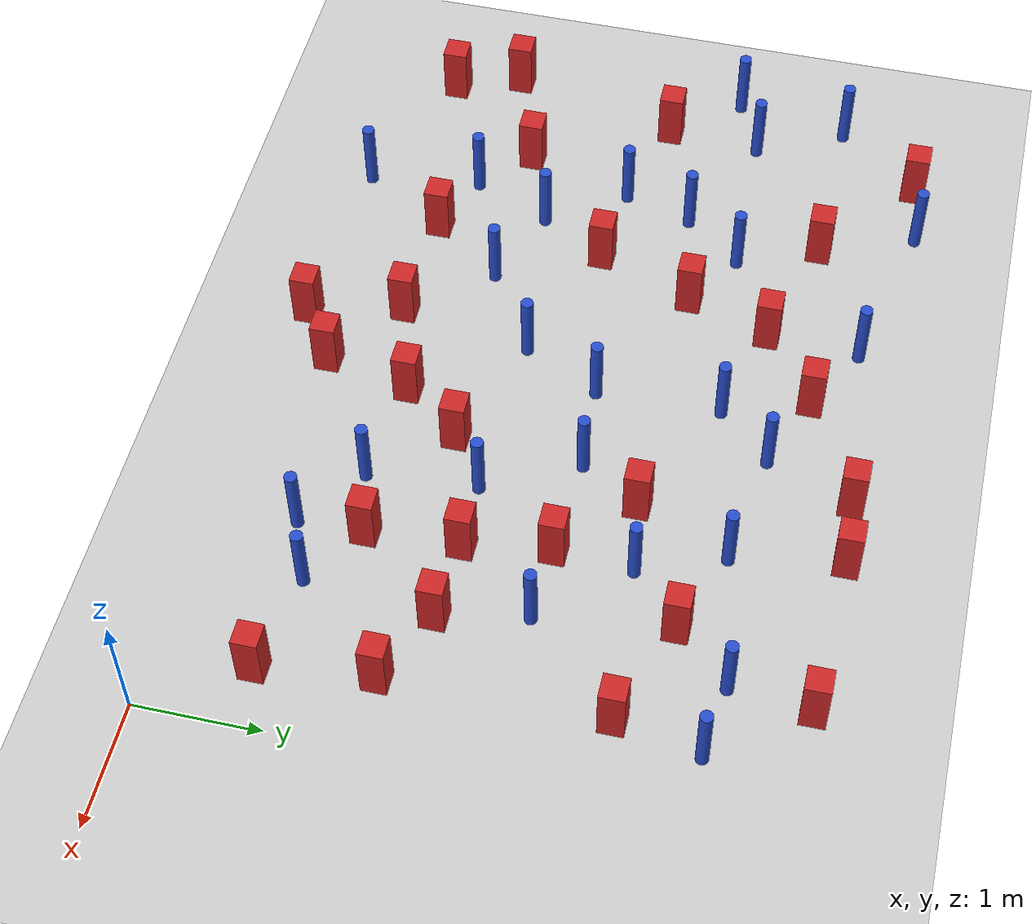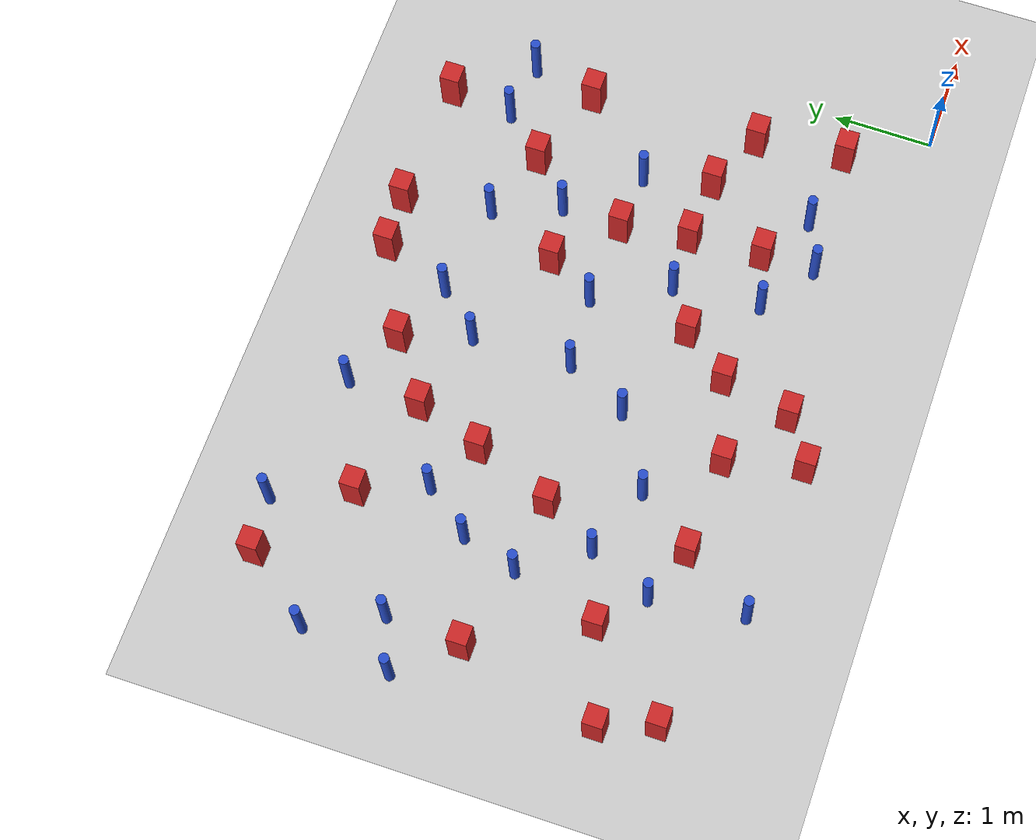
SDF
<sdf version="1.6">
 <world name="default">
  <model name="ground_plane">
   <static>1</static>
   <link name="link">
    <collision name="collision">
     <geometry><plane><normal>0 0 1</normal><size>100 100</size></plane></geometry>
     <surface><friction><ode><mu>100</mu><mu2>50</mu2></ode></friction></surface>
    </collision>
    <visual name="visual">
     <cast_shadows>0</cast_shadows>
     <geometry><plane><normal>0 0 1</normal><size>100 100</size></plane></geometry>
     <material>
      <ambient>1.0 1.0 1.0 1.0</ambient>
      <diffuse>0.8 0.8 0.8 1.0</diffuse>
      <specular>0.01 0.01 0.01 1.000000</specular>
     </material>
    </visual>
   </link>
  </model>
  <model name="square_post_obstacle3">
   <static>true</static>
   <pose>-2.81162814861 1.6960479583 8.22691968438e-08 7.2212513382e-06 -7.54495500217e-07 2.29674213826e-05</pose>
   <link name="link">
    <pose>0 0 0.25 0 -0 0</pose>
    <inertial>
     <mass>100</mass>
     <inertia>
      <ixx>0.166667</ixx>
      <ixy>0</ixy>
      <ixz>0</ixz>
      <iyy>0.166667</iyy>
      <iyz>0</iyz>
      <izz>0.166667</izz>
     </inertia>
    </inertial>
    <collision name="collision"><geometry><box><size>.2 .2 .5</size></box></geometry></collision>
    <visual name="visual">
     <geometry><box><size>.2 .2 .5</size></box></geometry>
     <material>
      <script><name>Gazebo/Red</name><uri>file://media/materials/scripts/gazebo.material</uri></script>
     </material>
    </visual>
   </link>
  </model>
  <model name="square_post_obstacle12">
   <static>true</static>
   <pose>-3.74836565161 4.35340912572 8.22691968438e-08 7.2212513382e-06 -7.54495500217e-07 2.29674213826e-05</pose>
   <link name="link">
    <pose>0 0 0.25 0 -0 0</pose>
    <inertial>
     <mass>100</mass>
     <inertia>
      <ixx>0.166667</ixx>
      <ixy>0</ixy>
      <ixz>0</ixz>
      <iyy>0.166667</iyy>
      <iyz>0</iyz>
      <izz>0.166667</izz>
     </inertia>
    </inertial>
    <collision name="collision"><geometry><box><size>.2 .2 .5</size></box></geometry></collision>
    <visual name="visual">
     <geometry><box><size>.2 .2 .5</size></box></geometry>
     <material>
      <script><name>Gazebo/Red</name><uri>file://media/materials/scripts/gazebo.material</uri></script>
     </material>
    </visual>
   </link>
  </model>
  <model name="square_post_obstacle16">
   <static>true</static>
   <pose>-4.91666649072 2.42147475702 8.22691968438e-08 7.2212513382e-06 -7.54495500217e-07 2.29674213826e-05</pose>
   <link name="link">
    <pose>0 0 0.25 0 -0 0</pose>
    <inertial>
     <mass>100</mass>
     <inertia>
      <ixx>0.166667</ixx>
      <ixy>0</ixy>
      <ixz>0</ixz>
      <iyy>0.166667</iyy>
      <iyz>0</iyz>
      <izz>0.166667</izz>
     </inertia>
    </inertial>
    <collision name="collision"><geometry><box><size>.2 .2 .5</size></box></geometry></collision>
    <visual name="visual">
     <geometry><box><size>.2 .2 .5</size></box></geometry>
     <material>
      <script><name>Gazebo/Red</name><uri>file://media/materials/scripts/gazebo.material</uri></script>
     </material>
    </visual>
   </link>
  </model>
  <model name="square_post_obstacle18">
   <static>true</static>
   <pose>-1.93032135828 2.67827413768 8.22691968438e-08 7.2212513382e-06 -7.54495500217e-07 2.29674213826e-05</pose>
   <link name="link">
    <pose>0 0 0.25 0 -0 0</pose>
    <inertial>
     <mass>100</mass>
     <inertia>
      <ixx>0.166667</ixx>
      <ixy>0</ixy>
      <ixz>0</ixz>
      <iyy>0.166667</iyy>
      <iyz>0</iyz>
      <izz>0.166667</izz>
     </inertia>
    </inertial>
    <collision name="collision"><geometry><box><size>.2 .2 .5</size></box></geometry></collision>
    <visual name="visual">
     <geometry><box><size>.2 .2 .5</size></box></geometry>
     <material>
      <script><name>Gazebo/Red</name><uri>file://media/materials/scripts/gazebo.material</uri></script>
     </material>
    </visual>
   </link>
  </model>
  <model name="pole_obstacle14">
   <static>true</static>
   <pose>-6.78186057395 4.19371458826 2.88873142074e-08 -9.90536690842e-09 4.60219948965e-07 -1.20965994976e-07</pose>
   <link name="link">
    <pose>0 0 0.3 0 -0 0</pose>
    <inertial>
     <mass>1</mass>
     <inertia><ixx>0.145833</ixx><ixy>0</ixy><ixz>0</ixz><iyy>0.145833</iyy><iyz>0</iyz><izz>0.125</izz></inertia>
    </inertial>
    <collision name="collision">
     <geometry><cylinder><radius>0.05</radius><length>.6</length></cylinder></geometry>
    </collision>
    <visual name="visual">
     <geometry><cylinder><radius>0.05</radius><length>.6</length></cylinder></geometry>
     <material>
      <script><name>Gazebo/Blue</name><uri>file://media/materials/scripts/gazebo.material</uri></script>
     </material>
    </visual>
   </link>
  </model>
  <model name="square_post_obstacle25">
   <static>true</static>
   <pose>-0.576374286577 1.67786561535 8.22691968438e-08 7.2212513382e-06 -7.54495500217e-07 2.29674213826e-05</pose>
   <link name="link">
    <pose>0 0 0.25 0 -0 0</pose>
    <inertial>
     <mass>100</mass>
     <inertia>
      <ixx>0.166667</ixx>
      <ixy>0</ixy>
      <ixz>0</ixz>
      <iyy>0.166667</iyy>
      <iyz>0</iyz>
      <izz>0.166667</izz>
     </inertia>
    </inertial>
    <collision name="collision"><geometry><box><size>.2 .2 .5</size></box></geometry></collision>
    <visual name="visual">
     <geometry><box><size>.2 .2 .5</size></box></geometry>
     <material>
      <script><name>Gazebo/Red</name><uri>file://media/materials/scripts/gazebo.material</uri></script>
     </material>
    </visual>
   </link>
  </model>
  <model name="square_post_obstacle26">
   <static>true</static>
   <pose>-2.47791191437 3.21057775229 8.22691968438e-08 7.2212513382e-06 -7.54495500217e-07 2.29674213826e-05</pose>
   <link name="link">
    <pose>0 0 0.25 0 -0 0</pose>
    <inertial>
     <mass>100</mass>
     <inertia>
      <ixx>0.166667</ixx>
      <ixy>0</ixy>
      <ixz>0</ixz>
      <iyy>0.166667</iyy>
      <iyz>0</iyz>
      <izz>0.166667</izz>
     </inertia>
    </inertial>
    <collision name="collision"><geometry><box><size>.2 .2 .5</size></box></geometry></collision>
    <visual name="visual">
     <geometry><box><size>.2 .2 .5</size></box></geometry>
     <material>
      <script><name>Gazebo/Red</name><uri>file://media/materials/scripts/gazebo.material</uri></script>
     </material>
    </visual>
   </link>
  </model>
  <model name="pole_obstacle18">
   <static>true</static>
   <pose>-1.32954895334 2.64004042287 2.88873142074e-08 -9.90536689791e-09 4.6021994899e-07 -1.20965994959e-07</pose>
   <link name="link">
    <pose>0 0 0.3 0 -0 0</pose>
    <inertial>
     <mass>1</mass>
     <inertia><ixx>0.145833</ixx><ixy>0</ixy><ixz>0</ixz><iyy>0.145833</iyy><iyz>0</iyz><izz>0.125</izz></inertia>
    </inertial>
    <collision name="collision">
     <geometry><cylinder><radius>0.05</radius><length>.6</length></cylinder></geometry>
    </collision>
    <visual name="visual">
     <geometry><cylinder><radius>0.05</radius><length>.6</length></cylinder></geometry>
     <material>
      <script><name>Gazebo/Blue</name><uri>file://media/materials/scripts/gazebo.material</uri></script>
     </material>
    </visual>
   </link>
  </model>
  <model name="pole_obstacle22">
   <static>true</static>
   <pose>-5.68496213997 4.9514411603 2.88873142074e-08 -9.90536690842e-09 4.60219948965e-07 -1.20965994976e-07</pose>
   <link name="link">
    <pose>0 0 0.3 0 -0 0</pose>
    <inertial>
     <mass>1</mass>
     <inertia><ixx>0.145833</ixx><ixy>0</ixy><ixz>0</ixz><iyy>0.145833</iyy><iyz>0</iyz><izz>0.125</izz></inertia>
    </inertial>
    <collision name="collision">
     <geometry><cylinder><radius>0.05</radius><length>.6</length></cylinder></geometry>
    </collision>
    <visual name="visual">
     <geometry><cylinder><radius>0.05</radius><length>.6</length></cylinder></geometry>
     <material>
      <script><name>Gazebo/Blue</name><uri>file://media/materials/scripts/gazebo.material</uri></script>
     </material>
    </visual>
   </link>
  </model>
  <model name="pole_obstacle27">
   <static>true</static>
   <pose>-5.6511313567 2.49095620854 2.88873142074e-08 -9.90536690245e-09 4.6021994898e-07 -1.20965994966e-07</pose>
   <link name="link">
    <pose>0 0 0.3 0 -0 0</pose>
    <inertial>
     <mass>1</mass>
     <inertia><ixx>0.145833</ixx><ixy>0</ixy><ixz>0</ixz><iyy>0.145833</iyy><iyz>0</iyz><izz>0.125</izz></inertia>
    </inertial>
    <collision name="collision">
     <geometry><cylinder><radius>0.05</radius><length>.6</length></cylinder></geometry>
    </collision>
    <visual name="visual">
     <geometry><cylinder><radius>0.05</radius><length>.6</length></cylinder></geometry>
     <material>
      <script><name>Gazebo/Blue</name><uri>file://media/materials/scripts/gazebo.material</uri></script>
     </material>
    </visual>
   </link>
  </model>
  <model name="square_post_obstacle35">
   <static>true</static>
   <pose>-5.91385978214 1.59937425938 8.22691968438e-08 7.2212513382e-06 -7.54495500217e-07 2.29674213826e-05</pose>
   <link name="link">
    <pose>0 0 0.25 0 -0 0</pose>
    <inertial>
     <mass>100</mass>
     <inertia>
      <ixx>0.166667</ixx>
      <ixy>0</ixy>
      <ixz>0</ixz>
      <iyy>0.166667</iyy>
      <iyz>0</iyz>
      <izz>0.166667</izz>
     </inertia>
    </inertial>
    <collision name="collision"><geometry><box><size>.2 .2 .5</size></box></geometry></collision>
    <visual name="visual">
     <geometry><box><size>.2 .2 .5</size></box></geometry>
     <material>
      <script><name>Gazebo/Red</name><uri>file://media/materials/scripts/gazebo.material</uri></script>
     </material>
    </visual>
   </link>
  </model>
  <model name="square_post_obstacle37">
   <static>true</static>
   <pose>-0.992633238213 4.78542532053 8.22691968438e-08 7.22125133819e-06 -7.54495500217e-07 2.29674213826e-05</pose>
   <link name="link">
    <pose>0 0 0.25 0 -0 0</pose>
    <inertial>
     <mass>100</mass>
     <inertia>
      <ixx>0.166667</ixx>
      <ixy>0</ixy>
      <ixz>0</ixz>
      <iyy>0.166667</iyy>
      <iyz>0</iyz>
      <izz>0.166667</izz>
     </inertia>
    </inertial>
    <collision name="collision"><geometry><box><size>.2 .2 .5</size></box></geometry></collision>
    <visual name="visual">
     <geometry><box><size>.2 .2 .5</size></box></geometry>
     <material>
      <script><name>Gazebo/Red</name><uri>file://media/materials/scripts/gazebo.material</uri></script>
     </material>
    </visual>
   </link>
  </model>
  <model name="pole_obstacle41">
   <static>true</static>
   <pose>-3.11907520182 4.10764423541 2.88873142074e-08 -9.90536689859e-09 4.60219948989e-07 -1.20965994961e-07</pose>
   <link name="link">
    <pose>0 0 0.3 0 -0 0</pose>
    <inertial>
     <mass>1</mass>
     <inertia><ixx>0.145833</ixx><ixy>0</ixy><ixz>0</ixz><iyy>0.145833</iyy><iyz>0</iyz><izz>0.125</izz></inertia>
    </inertial>
    <collision name="collision">
     <geometry><cylinder><radius>0.05</radius><length>.6</length></cylinder></geometry>
    </collision>
    <visual name="visual">
     <geometry><cylinder><radius>0.05</radius><length>.6</length></cylinder></geometry>
     <material>
      <script><name>Gazebo/Blue</name><uri>file://media/materials/scripts/gazebo.material</uri></script>
     </material>
    </visual>
   </link>
  </model>
  <model name="square_post_obstacle43">
   <static>true</static>
   <pose>-4.9663163909 1.01124914147 8.22691968438e-08 7.2212513382e-06 -7.54495500217e-07 2.29674213826e-05</pose>
   <link name="link">
    <pose>0 0 0.25 0 -0 0</pose>
    <inertial>
     <mass>100</mass>
     <inertia>
      <ixx>0.166667</ixx>
      <ixy>0</ixy>
      <ixz>0</ixz>
      <iyy>0.166667</iyy>
      <iyz>0</iyz>
      <izz>0.166667</izz>
     </inertia>
    </inertial>
    <collision name="collision"><geometry><box><size>.2 .2 .5</size></box></geometry></collision>
    <visual name="visual">
     <geometry><box><size>.2 .2 .5</size></box></geometry>
     <material>
      <script><name>Gazebo/Red</name><uri>file://media/materials/scripts/gazebo.material</uri></script>
     </material>
    </visual>
   </link>
  </model>
  <model name="square_post_obstacle44">
   <static>true</static>
   <pose>-1.8253839334 1.99176667823 8.22691968438e-08 7.2212513382e-06 -7.54495500217e-07 2.29674213826e-05</pose>
   <link name="link">
    <pose>0 0 0.25 0 -0 0</pose>
    <inertial>
     <mass>100</mass>
     <inertia>
      <ixx>0.166667</ixx>
      <ixy>0</ixy>
      <ixz>0</ixz>
      <iyy>0.166667</iyy>
      <iyz>0</iyz>
      <izz>0.166667</izz>
     </inertia>
    </inertial>
    <collision name="collision"><geometry><box><size>.2 .2 .5</size></box></geometry></collision>
    <visual name="visual">
     <geometry><box><size>.2 .2 .5</size></box></geometry>
     <material>
      <script><name>Gazebo/Red</name><uri>file://media/materials/scripts/gazebo.material</uri></script>
     </material>
    </visual>
   </link>
  </model>
  <model name="pole_obstacle53">
   <static>true</static>
   <pose>-2.16027237423 3.96692041326 2.88873142074e-08 -9.90536690801e-09 4.60219948966e-07 -1.20965994976e-07</pose>
   <link name="link">
    <pose>0 0 0.3 0 -0 0</pose>
    <inertial>
     <mass>1</mass>
     <inertia><ixx>0.145833</ixx><ixy>0</ixy><ixz>0</ixz><iyy>0.145833</iyy><iyz>0</iyz><izz>0.125</izz></inertia>
    </inertial>
    <collision name="collision">
     <geometry><cylinder><radius>0.05</radius><length>.6</length></cylinder></geometry>
    </collision>
    <visual name="visual">
     <geometry><cylinder><radius>0.05</radius><length>.6</length></cylinder></geometry>
     <material>
      <script><name>Gazebo/Blue</name><uri>file://media/materials/scripts/gazebo.material</uri></script>
     </material>
    </visual>
   </link>
  </model>
  <model name="pole_obstacle55">
   <static>true</static>
   <pose>-1.28195237412 0.910807069991 2.88873142074e-08 -9.90536689692e-09 4.60219948993e-07 -1.20965994958e-07</pose>
   <link name="link">
    <pose>0 0 0.3 0 -0 0</pose>
    <inertial>
     <mass>1</mass>
     <inertia><ixx>0.145833</ixx><ixy>0</ixy><ixz>0</ixz><iyy>0.145833</iyy><iyz>0</iyz><izz>0.125</izz></inertia>
    </inertial>
    <collision name="collision">
     <geometry><cylinder><radius>0.05</radius><length>.6</length></cylinder></geometry>
    </collision>
    <visual name="visual">
     <geometry><cylinder><radius>0.05</radius><length>.6</length></cylinder></geometry>
     <material>
      <script><name>Gazebo/Blue</name><uri>file://media/materials/scripts/gazebo.material</uri></script>
     </material>
    </visual>
   </link>
  </model>
  <model name="pole_obstacle56">
   <static>true</static>
   <pose>-5.38888479309 0.293588208801 2.88873142074e-08 -9.90536689883e-09 4.60219948988e-07 -1.20965994961e-07</pose>
   <link name="link">
    <pose>0 0 0.3 0 -0 0</pose>
    <inertial>
     <mass>1</mass>
     <inertia><ixx>0.145833</ixx><ixy>0</ixy><ixz>0</ixz><iyy>0.145833</iyy><iyz>0</iyz><izz>0.125</izz></inertia>
    </inertial>
    <collision name="collision">
     <geometry><cylinder><radius>0.05</radius><length>.6</length></cylinder></geometry>
    </collision>
    <visual name="visual">
     <geometry><cylinder><radius>0.05</radius><length>.6</length></cylinder></geometry>
     <material>
      <script><name>Gazebo/Blue</name><uri>file://media/materials/scripts/gazebo.material</uri></script>
     </material>
    </visual>
   </link>
  </model>
  <model name="square_post_obstacle61">
   <static>true</static>
   <pose>-0.613538637109 3.4036957802 8.22691968438e-08 7.2212513382e-06 -7.54495500217e-07 2.29674213826e-05</pose>
   <link name="link">
    <pose>0 0 0.25 0 -0 0</pose>
    <inertial>
     <mass>100</mass>
     <inertia>
      <ixx>0.166667</ixx>
      <ixy>0</ixy>
      <ixz>0</ixz>
      <iyy>0.166667</iyy>
      <iyz>0</iyz>
      <izz>0.166667</izz>
     </inertia>
    </inertial>
    <collision name="collision"><geometry><box><size>.2 .2 .5</size></box></geometry></collision>
    <visual name="visual">
     <geometry><box><size>.2 .2 .5</size></box></geometry>
     <material>
      <script><name>Gazebo/Red</name><uri>file://media/materials/scripts/gazebo.material</uri></script>
     </material>
    </visual>
   </link>
  </model>
  <model name="square_post_obstacle64">
   <static>true</static>
   <pose>-6.48506108691 2.71224327684 8.22691968438e-08 7.2212513382e-06 -7.54495500217e-07 2.29674213826e-05</pose>
   <link name="link">
    <pose>0 0 0.25 0 -0 0</pose>
    <inertial>
     <mass>100</mass>
     <inertia>
      <ixx>0.166667</ixx>
      <ixy>0</ixy>
      <ixz>0</ixz>
      <iyy>0.166667</iyy>
      <iyz>0</iyz>
      <izz>0.166667</izz>
     </inertia>
    </inertial>
    <collision name="collision"><geometry><box><size>.2 .2 .5</size></box></geometry></collision>
    <visual name="visual">
     <geometry><box><size>.2 .2 .5</size></box></geometry>
     <material>
      <script><name>Gazebo/Red</name><uri>file://media/materials/scripts/gazebo.material</uri></script>
     </material>
    </visual>
   </link>
  </model>
  <model name="square_post_obstacle66">
   <static>true</static>
   <pose>-6.63171751343 0.748961875187 8.22691968438e-08 7.2212513382e-06 -7.54495500217e-07 2.29674213826e-05</pose>
   <link name="link">
    <pose>0 0 0.25 0 -0 0</pose>
    <inertial>
     <mass>100</mass>
     <inertia>
      <ixx>0.166667</ixx>
      <ixy>0</ixy>
      <ixz>0</ixz>
      <iyy>0.166667</iyy>
      <iyz>0</iyz>
      <izz>0.166667</izz>
     </inertia>
    </inertial>
    <collision name="collision"><geometry><box><size>.2 .2 .5</size></box></geometry></collision>
    <visual name="visual">
     <geometry><box><size>.2 .2 .5</size></box></geometry>
     <material>
      <script><name>Gazebo/Red</name><uri>file://media/materials/scripts/gazebo.material</uri></script>
     </material>
    </visual>
   </link>
  </model>
  <model name="square_post_obstacle70">
   <static>true</static>
   <pose>-4.60180144477 3.21971801244 8.22691968438e-08 7.2212513382e-06 -7.54495500217e-07 2.29674213826e-05</pose>
   <link name="link">
    <pose>0 0 0.25 0 -0 0</pose>
    <inertial>
     <mass>100</mass>
     <inertia>
      <ixx>0.166667</ixx>
      <ixy>0</ixy>
      <ixz>0</ixz>
      <iyy>0.166667</iyy>
      <iyz>0</iyz>
      <izz>0.166667</izz>
     </inertia>
    </inertial>
    <collision name="collision"><geometry><box><size>.2 .2 .5</size></box></geometry></collision>
    <visual name="visual">
     <geometry><box><size>.2 .2 .5</size></box></geometry>
     <material>
      <script><name>Gazebo/Red</name><uri>file://media/materials/scripts/gazebo.material</uri></script>
     </material>
    </visual>
   </link>
  </model>
  <model name="pole_obstacle68">
   <static>true</static>
   <pose>-3.81200626688 2.03770240434 2.88873142074e-08 -9.90536689662e-09 4.60219948993e-07 -1.20965994957e-07</pose>
   <link name="link">
    <pose>0 0 0.3 0 -0 0</pose>
    <inertial>
     <mass>1</mass>
     <inertia><ixx>0.145833</ixx><ixy>0</ixy><ixz>0</ixz><iyy>0.145833</iyy><iyz>0</iyz><izz>0.125</izz></inertia>
    </inertial>
    <collision name="collision">
     <geometry><cylinder><radius>0.05</radius><length>.6</length></cylinder></geometry>
    </collision>
    <visual name="visual">
     <geometry><cylinder><radius>0.05</radius><length>.6</length></cylinder></geometry>
     <material>
      <script><name>Gazebo/Blue</name><uri>file://media/materials/scripts/gazebo.material</uri></script>
     </material>
    </visual>
   </link>
  </model>
  <model name="square_post_obstacle78">
   <static>true</static>
   <pose>-5.37335369018 4.18141858264 8.22691968438e-08 7.2212513382e-06 -7.54495500217e-07 2.29674213826e-05</pose>
   <link name="link">
    <pose>0 0 0.25 0 -0 0</pose>
    <inertial>
     <mass>100</mass>
     <inertia>
      <ixx>0.166667</ixx>
      <ixy>0</ixy>
      <ixz>0</ixz>
      <iyy>0.166667</iyy>
      <iyz>0</iyz>
      <izz>0.166667</izz>
     </inertia>
    </inertial>
    <collision name="collision"><geometry><box><size>.2 .2 .5</size></box></geometry></collision>
    <visual name="visual">
     <geometry><box><size>.2 .2 .5</size></box></geometry>
     <material>
      <script><name>Gazebo/Red</name><uri>file://media/materials/scripts/gazebo.material</uri></script>
     </material>
    </visual>
   </link>
  </model>
  <model name="square_post_obstacle89">
   <static>true</static>
   <pose>-6.23559817763 4.8691077425 8.22691968438e-08 7.22125133819e-06 -7.54495500217e-07 2.29674213826e-05</pose>
   <link name="link">
    <pose>0 0 0.25 0 -0 0</pose>
    <inertial>
     <mass>100</mass>
     <inertia>
      <ixx>0.166667</ixx>
      <ixy>0</ixy>
      <ixz>0</ixz>
      <iyy>0.166667</iyy>
      <iyz>0</iyz>
      <izz>0.166667</izz>
     </inertia>
    </inertial>
    <collision name="collision"><geometry><box><size>.2 .2 .5</size></box></geometry></collision>
    <visual name="visual">
     <geometry><box><size>.2 .2 .5</size></box></geometry>
     <material>
      <script><name>Gazebo/Red</name><uri>file://media/materials/scripts/gazebo.material</uri></script>
     </material>
    </visual>
   </link>
  </model>
  <model name="square_post_obstacle96">
   <static>true</static>
   <pose>-3.99081485508 0.96594109771 8.22691968438e-08 7.2212513382e-06 -7.54495500217e-07 2.29674213826e-05</pose>
   <link name="link">
    <pose>0 0 0.25 0 -0 0</pose>
    <inertial>
     <mass>100</mass>
     <inertia>
      <ixx>0.166667</ixx>
      <ixy>0</ixy>
      <ixz>0</ixz>
      <iyy>0.166667</iyy>
      <iyz>0</iyz>
      <izz>0.166667</izz>
     </inertia>
    </inertial>
    <collision name="collision"><geometry><box><size>.2 .2 .5</size></box></geometry></collision>
    <visual name="visual">
     <geometry><box><size>.2 .2 .5</size></box></geometry>
     <material>
      <script><name>Gazebo/Red</name><uri>file://media/materials/scripts/gazebo.material</uri></script>
     </material>
    </visual>
   </link>
  </model>
  <model name="pole_obstacle109">
   <static>true</static>
   <pose>-5.11226212335 3.52792506456 2.88873142074e-08 -9.90536690245e-09 4.6021994898e-07 -1.20965994966e-07</pose>
   <link name="link">
    <pose>0 0 0.3 0 -0 0</pose>
    <inertial>
     <mass>1</mass>
     <inertia><ixx>0.145833</ixx><ixy>0</ixy><ixz>0</ixz><iyy>0.145833</iyy><iyz>0</iyz><izz>0.125</izz></inertia>
    </inertial>
    <collision name="collision">
     <geometry><cylinder><radius>0.05</radius><length>.6</length></cylinder></geometry>
    </collision>
    <visual name="visual">
     <geometry><cylinder><radius>0.05</radius><length>.6</length></cylinder></geometry>
     <material>
      <script><name>Gazebo/Blue</name><uri>file://media/materials/scripts/gazebo.material</uri></script>
     </material>
    </visual>
   </link>
  </model>
  <model name="square_post_obstacle109">
   <static>true</static>
   <pose>-1.78487274399 1.25265128682 8.22691968438e-08 7.2212513382e-06 -7.54495500217e-07 2.29674213826e-05</pose>
   <link name="link">
    <pose>0 0 0.25 0 -0 0</pose>
    <inertial>
     <mass>100</mass>
     <inertia>
      <ixx>0.166667</ixx>
      <ixy>0</ixy>
      <ixz>0</ixz>
      <iyy>0.166667</iyy>
      <iyz>0</iyz>
      <izz>0.166667</izz>
     </inertia>
    </inertial>
    <collision name="collision"><geometry><box><size>.2 .2 .5</size></box></geometry></collision>
    <visual name="visual">
     <geometry><box><size>.2 .2 .5</size></box></geometry>
     <material>
      <script><name>Gazebo/Red</name><uri>file://media/materials/scripts/gazebo.material</uri></script>
     </material>
    </visual>
   </link>
  </model>
  <model name="pole_obstacle127">
   <static>true</static>
   <pose>-0.47468224994 4.07199545459 2.88873142074e-08 -9.90536689758e-09 4.60219948991e-07 -1.20965994957e-07</pose>
   <link name="link">
    <pose>0 0 0.3 0 -0 0</pose>
    <inertial>
     <mass>1</mass>
     <inertia><ixx>0.145833</ixx><ixy>0</ixy><ixz>0</ixz><iyy>0.145833</iyy><iyz>0</iyz><izz>0.125</izz></inertia>
    </inertial>
    <collision name="collision">
     <geometry><cylinder><radius>0.05</radius><length>.6</length></cylinder></geometry>
    </collision>
    <visual name="visual">
     <geometry><cylinder><radius>0.05</radius><length>.6</length></cylinder></geometry>
     <material>
      <script><name>Gazebo/Blue</name><uri>file://media/materials/scripts/gazebo.material</uri></script>
     </material>
    </visual>
   </link>
  </model>
  <model name="pole_obstacle139">
   <static>true</static>
   <pose>-5.47869068044 3.05746522812 2.88873142074e-08 -9.90536690245e-09 4.6021994898e-07 -1.20965994966e-07</pose>
   <link name="link">
    <pose>0 0 0.3 0 -0 0</pose>
    <inertial>
     <mass>1</mass>
     <inertia><ixx>0.145833</ixx><ixy>0</ixy><ixz>0</ixz><iyy>0.145833</iyy><iyz>0</iyz><izz>0.125</izz></inertia>
    </inertial>
    <collision name="collision">
     <geometry><cylinder><radius>0.05</radius><length>.6</length></cylinder></geometry>
    </collision>
    <visual name="visual">
     <geometry><cylinder><radius>0.05</radius><length>.6</length></cylinder></geometry>
     <material>
      <script><name>Gazebo/Blue</name><uri>file://media/materials/scripts/gazebo.material</uri></script>
     </material>
    </visual>
   </link>
  </model>
  <model name="square_post_obstacle123">
   <static>true</static>
   <pose>-3.80547851451 0.19918237096 8.22691968438e-08 7.2212513382e-06 -7.54495500217e-07 2.29674213826e-05</pose>
   <link name="link">
    <pose>0 0 0.25 0 -0 0</pose>
    <inertial>
     <mass>100</mass>
     <inertia>
      <ixx>0.166667</ixx>
      <ixy>0</ixy>
      <ixz>0</ixz>
      <iyy>0.166667</iyy>
      <iyz>0</iyz>
      <izz>0.166667</izz>
     </inertia>
    </inertial>
    <collision name="collision"><geometry><box><size>.2 .2 .5</size></box></geometry></collision>
    <visual name="visual">
     <geometry><box><size>.2 .2 .5</size></box></geometry>
     <material>
      <script><name>Gazebo/Red</name><uri>file://media/materials/scripts/gazebo.material</uri></script>
     </material>
    </visual>
   </link>
  </model>
  <model name="square_post_obstacle133">
   <static>true</static>
   <pose>-4.36293882283 3.90518729515 8.22691968438e-08 7.2212513382e-06 -7.54495500217e-07 2.29674213826e-05</pose>
   <link name="link">
    <pose>0 0 0.25 0 -0 0</pose>
    <inertial>
     <mass>100</mass>
     <inertia>
      <ixx>0.166667</ixx>
      <ixy>0</ixy>
      <ixz>0</ixz>
      <iyy>0.166667</iyy>
      <iyz>0</iyz>
      <izz>0.166667</izz>
     </inertia>
    </inertial>
    <collision name="collision"><geometry><box><size>.2 .2 .5</size></box></geometry></collision>
    <visual name="visual">
     <geometry><box><size>.2 .2 .5</size></box></geometry>
     <material>
      <script><name>Gazebo/Red</name><uri>file://media/materials/scripts/gazebo.material</uri></script>
     </material>
    </visual>
   </link>
  </model>
  <model name="pole_obstacle148">
   <static>true</static>
   <pose>-1.06093250518 4.14889483755 2.88873142074e-08 -9.90536689852e-09 4.60219948989e-07 -1.2096599496e-07</pose>
   <link name="link">
    <pose>0 0 0.3 0 -0 0</pose>
    <inertial>
     <mass>1</mass>
     <inertia><ixx>0.145833</ixx><ixy>0</ixy><ixz>0</ixz><iyy>0.145833</iyy><iyz>0</iyz><izz>0.125</izz></inertia>
    </inertial>
    <collision name="collision">
     <geometry><cylinder><radius>0.05</radius><length>.6</length></cylinder></geometry>
    </collision>
    <visual name="visual">
     <geometry><cylinder><radius>0.05</radius><length>.6</length></cylinder></geometry>
     <material>
      <script><name>Gazebo/Blue</name><uri>file://media/materials/scripts/gazebo.material</uri></script>
     </material>
    </visual>
   </link>
  </model>
  <model name="square_post_obstacle139">
   <static>true</static>
   <pose>-1.17657870165 1.94981089154 8.22691968438e-08 7.2212513382e-06 -7.54495500217e-07 2.29674213826e-05</pose>
   <link name="link">
    <pose>0 0 0.25 0 -0 0</pose>
    <inertial>
     <mass>100</mass>
     <inertia>
      <ixx>0.166667</ixx>
      <ixy>0</ixy>
      <ixz>0</ixz>
      <iyy>0.166667</iyy>
      <iyz>0</iyz>
      <izz>0.166667</izz>
     </inertia>
    </inertial>
    <collision name="collision"><geometry><box><size>.2 .2 .5</size></box></geometry></collision>
    <visual name="visual">
     <geometry><box><size>.2 .2 .5</size></box></geometry>
     <material>
      <script><name>Gazebo/Red</name><uri>file://media/materials/scripts/gazebo.material</uri></script>
     </material>
    </visual>
   </link>
  </model>
  <model name="pole_obstacle155">
   <static>true</static>
   <pose>-2.31613641585 1.10364638575 2.88873142074e-08 -9.90536689395e-09 4.60219949e-07 -1.20965994953e-07</pose>
   <link name="link">
    <pose>0 0 0.3 0 -0 0</pose>
    <inertial>
     <mass>1</mass>
     <inertia><ixx>0.145833</ixx><ixy>0</ixy><ixz>0</ixz><iyy>0.145833</iyy><iyz>0</iyz><izz>0.125</izz></inertia>
    </inertial>
    <collision name="collision">
     <geometry><cylinder><radius>0.05</radius><length>.6</length></cylinder></geometry>
    </collision>
    <visual name="visual">
     <geometry><cylinder><radius>0.05</radius><length>.6</length></cylinder></geometry>
     <material>
      <script><name>Gazebo/Blue</name><uri>file://media/materials/scripts/gazebo.material</uri></script>
     </material>
    </visual>
   </link>
  </model>
  <model name="square_post_obstacle153">
   <static>true</static>
   <pose>-6.82392376626 1.29127546928 8.22691968438e-08 7.2212513382e-06 -7.54495500217e-07 2.29674213826e-05</pose>
   <link name="link">
    <pose>0 0 0.25 0 -0 0</pose>
    <inertial>
     <mass>100</mass>
     <inertia>
      <ixx>0.166667</ixx>
      <ixy>0</ixy>
      <ixz>0</ixz>
      <iyy>0.166667</iyy>
      <iyz>0</iyz>
      <izz>0.166667</izz>
     </inertia>
    </inertial>
    <collision name="collision"><geometry><box><size>.2 .2 .5</size></box></geometry></collision>
    <visual name="visual">
     <geometry><box><size>.2 .2 .5</size></box></geometry>
     <material>
      <script><name>Gazebo/Red</name><uri>file://media/materials/scripts/gazebo.material</uri></script>
     </material>
    </visual>
   </link>
  </model>
  <model name="pole_obstacle162">
   <static>true</static>
   <pose>-5.51604827007 1.21920574361 2.88873142074e-08 -9.90536689445e-09 4.60219948999e-07 -1.20965994956e-07</pose>
   <link name="link">
    <pose>0 0 0.3 0 -0 0</pose>
    <inertial>
     <mass>1</mass>
     <inertia><ixx>0.145833</ixx><ixy>0</ixy><ixz>0</ixz><iyy>0.145833</iyy><iyz>0</iyz><izz>0.125</izz></inertia>
    </inertial>
    <collision name="collision">
     <geometry><cylinder><radius>0.05</radius><length>.6</length></cylinder></geometry>
    </collision>
    <visual name="visual">
     <geometry><cylinder><radius>0.05</radius><length>.6</length></cylinder></geometry>
     <material>
      <script><name>Gazebo/Blue</name><uri>file://media/materials/scripts/gazebo.material</uri></script>
     </material>
    </visual>
   </link>
  </model>
  <model name="square_post_obstacle155">
   <static>true</static>
   <pose>-2.29815681052 4.84005140943 8.22691968438e-08 7.2212513382e-06 -7.54495500217e-07 2.29674213826e-05</pose>
   <link name="link">
    <pose>0 0 0.25 0 -0 0</pose>
    <inertial>
     <mass>100</mass>
     <inertia>
      <ixx>0.166667</ixx>
      <ixy>0</ixy>
      <ixz>0</ixz>
      <iyy>0.166667</iyy>
      <iyz>0</iyz>
      <izz>0.166667</izz>
     </inertia>
    </inertial>
    <collision name="collision"><geometry><box><size>.2 .2 .5</size></box></geometry></collision>
    <visual name="visual">
     <geometry><box><size>.2 .2 .5</size></box></geometry>
     <material>
      <script><name>Gazebo/Red</name><uri>file://media/materials/scripts/gazebo.material</uri></script>
     </material>
    </visual>
   </link>
  </model>
  <model name="pole_obstacle169">
   <static>true</static>
   <pose>-1.89922982162 3.29976651247 2.88873142074e-08 -9.90536689791e-09 4.6021994899e-07 -1.20965994959e-07</pose>
   <link name="link">
    <pose>0 0 0.3 0 -0 0</pose>
    <inertial>
     <mass>1</mass>
     <inertia><ixx>0.145833</ixx><ixy>0</ixy><ixz>0</ixz><iyy>0.145833</iyy><iyz>0</iyz><izz>0.125</izz></inertia>
    </inertial>
    <collision name="collision">
     <geometry><cylinder><radius>0.05</radius><length>.6</length></cylinder></geometry>
    </collision>
    <visual name="visual">
     <geometry><cylinder><radius>0.05</radius><length>.6</length></cylinder></geometry>
     <material>
      <script><name>Gazebo/Blue</name><uri>file://media/materials/scripts/gazebo.material</uri></script>
     </material>
    </visual>
   </link>
  </model>
  <model name="pole_obstacle170">
   <static>true</static>
   <pose>-2.3907295358 1.98362916791 2.88873142074e-08 -9.90536690039e-09 4.60219948984e-07 -1.20965994965e-07</pose>
   <link name="link">
    <pose>0 0 0.3 0 -0 0</pose>
    <inertial>
     <mass>1</mass>
     <inertia><ixx>0.145833</ixx><ixy>0</ixy><ixz>0</ixz><iyy>0.145833</iyy><iyz>0</iyz><izz>0.125</izz></inertia>
    </inertial>
    <collision name="collision">
     <geometry><cylinder><radius>0.05</radius><length>.6</length></cylinder></geometry>
    </collision>
    <visual name="visual">
     <geometry><cylinder><radius>0.05</radius><length>.6</length></cylinder></geometry>
     <material>
      <script><name>Gazebo/Blue</name><uri>file://media/materials/scripts/gazebo.material</uri></script>
     </material>
    </visual>
   </link>
  </model>
  <model name="pole_obstacle177">
   <static>true</static>
   <pose>-5.23177904213 1.8628321785 2.88873142074e-08 -9.90536689445e-09 4.60219948999e-07 -1.20965994956e-07</pose>
   <link name="link">
    <pose>0 0 0.3 0 -0 0</pose>
    <inertial>
     <mass>1</mass>
     <inertia><ixx>0.145833</ixx><ixy>0</ixy><ixz>0</ixz><iyy>0.145833</iyy><iyz>0</iyz><izz>0.125</izz></inertia>
    </inertial>
    <collision name="collision">
     <geometry><cylinder><radius>0.05</radius><length>.6</length></cylinder></geometry>
    </collision>
    <visual name="visual">
     <geometry><cylinder><radius>0.05</radius><length>.6</length></cylinder></geometry>
     <material>
      <script><name>Gazebo/Blue</name><uri>file://media/materials/scripts/gazebo.material</uri></script>
     </material>
    </visual>
   </link>
  </model>
  <model name="square_post_obstacle169">
   <static>true</static>
   <pose>-3.35329088454 0.502663687263 8.22691968438e-08 7.22125133819e-06 -7.54495500217e-07 2.29674213826e-05</pose>
   <link name="link">
    <pose>0 0 0.25 0 -0 0</pose>
    <inertial>
     <mass>100</mass>
     <inertia>
      <ixx>0.166667</ixx>
      <ixy>0</ixy>
      <ixz>0</ixz>
      <iyy>0.166667</iyy>
      <iyz>0</iyz>
      <izz>0.166667</izz>
     </inertia>
    </inertial>
    <collision name="collision"><geometry><box><size>.2 .2 .5</size></box></geometry></collision>
    <visual name="visual">
     <geometry><box><size>.2 .2 .5</size></box></geometry>
     <material>
      <script><name>Gazebo/Red</name><uri>file://media/materials/scripts/gazebo.material</uri></script>
     </material>
    </visual>
   </link>
  </model>
  <model name="pole_obstacle182">
   <static>true</static>
   <pose>-3.49541626299 2.66909867695 2.88873142074e-08 -9.90536690232e-09 4.6021994898e-07 -1.20965994968e-07</pose>
   <link name="link">
    <pose>0 0 0.3 0 -0 0</pose>
    <inertial>
     <mass>1</mass>
     <inertia><ixx>0.145833</ixx><ixy>0</ixy><ixz>0</ixz><iyy>0.145833</iyy><iyz>0</iyz><izz>0.125</izz></inertia>
    </inertial>
    <collision name="collision">
     <geometry><cylinder><radius>0.05</radius><length>.6</length></cylinder></geometry>
    </collision>
    <visual name="visual">
     <geometry><cylinder><radius>0.05</radius><length>.6</length></cylinder></geometry>
     <material>
      <script><name>Gazebo/Blue</name><uri>file://media/materials/scripts/gazebo.material</uri></script>
     </material>
    </visual>
   </link>
  </model>
  <model name="square_post_obstacle172">
   <static>true</static>
   <pose>-1.46248508736 3.70419755043 8.22691968438e-08 7.2212513382e-06 -7.54495500217e-07 2.29674213826e-05</pose>
   <link name="link">
    <pose>0 0 0.25 0 -0 0</pose>
    <inertial>
     <mass>100</mass>
     <inertia>
      <ixx>0.166667</ixx>
      <ixy>0</ixy>
      <ixz>0</ixz>
      <iyy>0.166667</iyy>
      <iyz>0</iyz>
      <izz>0.166667</izz>
     </inertia>
    </inertial>
    <collision name="collision"><geometry><box><size>.2 .2 .5</size></box></geometry></collision>
    <visual name="visual">
     <geometry><box><size>.2 .2 .5</size></box></geometry>
     <material>
      <script><name>Gazebo/Red</name><uri>file://media/materials/scripts/gazebo.material</uri></script>
     </material>
    </visual>
   </link>
  </model>
  <model name="pole_obstacle185">
   <static>true</static>
   <pose>-3.52215414257 3.67529431302 2.88873142074e-08 -9.90536690232e-09 4.6021994898e-07 -1.20965994968e-07</pose>
   <link name="link">
    <pose>0 0 0.3 0 -0 0</pose>
    <inertial>
     <mass>1</mass>
     <inertia><ixx>0.145833</ixx><ixy>0</ixy><ixz>0</ixz><iyy>0.145833</iyy><iyz>0</iyz><izz>0.125</izz></inertia>
    </inertial>
    <collision name="collision">
     <geometry><cylinder><radius>0.05</radius><length>.6</length></cylinder></geometry>
    </collision>
    <visual name="visual">
     <geometry><cylinder><radius>0.05</radius><length>.6</length></cylinder></geometry>
     <material>
      <script><name>Gazebo/Blue</name><uri>file://media/materials/scripts/gazebo.material</uri></script>
     </material>
    </visual>
   </link>
  </model>
  <model name="pole_obstacle187">
   <static>true</static>
   <pose>-1.77779454367 0.714563766304 2.88873142074e-08 -9.90536689692e-09 4.60219948993e-07 -1.20965994958e-07</pose>
   <link name="link">
    <pose>0 0 0.3 0 -0 0</pose>
    <inertial>
     <mass>1</mass>
     <inertia><ixx>0.145833</ixx><ixy>0</ixy><ixz>0</ixz><iyy>0.145833</iyy><iyz>0</iyz><izz>0.125</izz></inertia>
    </inertial>
    <collision name="collision">
     <geometry><cylinder><radius>0.05</radius><length>.6</length></cylinder></geometry>
    </collision>
    <visual name="visual">
     <geometry><cylinder><radius>0.05</radius><length>.6</length></cylinder></geometry>
     <material>
      <script><name>Gazebo/Blue</name><uri>file://media/materials/scripts/gazebo.material</uri></script>
     </material>
    </visual>
   </link>
  </model>
  <model name="square_post_obstacle178">
   <static>true</static>
   <pose>-3.18724805177 1.21232804032 8.22691968438e-08 7.22125133819e-06 -7.54495500217e-07 2.29674213826e-05</pose>
   <link name="link">
    <pose>0 0 0.25 0 -0 0</pose>
    <inertial>
     <mass>100</mass>
     <inertia>
      <ixx>0.166667</ixx>
      <ixy>0</ixy>
      <ixz>0</ixz>
      <iyy>0.166667</iyy>
      <iyz>0</iyz>
      <izz>0.166667</izz>
     </inertia>
    </inertial>
    <collision name="collision"><geometry><box><size>.2 .2 .5</size></box></geometry></collision>
    <visual name="visual">
     <geometry><box><size>.2 .2 .5</size></box></geometry>
     <material>
      <script><name>Gazebo/Red</name><uri>file://media/materials/scripts/gazebo.material</uri></script>
     </material>
    </visual>
   </link>
  </model>
  <model name="square_post_obstacle188">
   <static>true</static>
   <pose>-0.467963623003 0.787531078774 8.22691968438e-08 7.2212513382e-06 -7.54495500217e-07 2.29674213826e-05</pose>
   <link name="link">
    <pose>0 0 0.25 0 -0 0</pose>
    <inertial>
     <mass>100</mass>
     <inertia>
      <ixx>0.166667</ixx>
      <ixy>0</ixy>
      <ixz>0</ixz>
      <iyy>0.166667</iyy>
      <iyz>0</iyz>
      <izz>0.166667</izz>
     </inertia>
    </inertial>
    <collision name="collision"><geometry><box><size>.2 .2 .5</size></box></geometry></collision>
    <visual name="visual">
     <geometry><box><size>.2 .2 .5</size></box></geometry>
     <material>
      <script><name>Gazebo/Red</name><uri>file://media/materials/scripts/gazebo.material</uri></script>
     </material>
    </visual>
   </link>
  </model>
  <model name="square_post_obstacle200">
   <static>true</static>
   <pose>-2.84953953747 4.8004580662 8.22691968438e-08 7.2212513382e-06 -7.54495500217e-07 2.29674213826e-05</pose>
   <link name="link">
    <pose>0 0 0.25 0 -0 0</pose>
    <inertial>
     <mass>100</mass>
     <inertia>
      <ixx>0.166667</ixx>
      <ixy>0</ixy>
      <ixz>0</ixz>
      <iyy>0.166667</iyy>
      <iyz>0</iyz>
      <izz>0.166667</izz>
     </inertia>
    </inertial>
    <collision name="collision"><geometry><box><size>.2 .2 .5</size></box></geometry></collision>
    <visual name="visual">
     <geometry><box><size>.2 .2 .5</size></box></geometry>
     <material>
      <script><name>Gazebo/Red</name><uri>file://media/materials/scripts/gazebo.material</uri></script>
     </material>
    </visual>
   </link>
  </model>
  <model name="pole_obstacle199">
   <static>true</static>
   <pose>-6.43983642386 3.48104543869 2.88873142074e-08 -9.90536690245e-09 4.6021994898e-07 -1.20965994966e-07</pose>
   <link name="link">
    <pose>0 0 0.3 0 -0 0</pose>
    <inertial>
     <mass>1</mass>
     <inertia><ixx>0.145833</ixx><ixy>0</ixy><ixz>0</ixz><iyy>0.145833</iyy><iyz>0</iyz><izz>0.125</izz></inertia>
    </inertial>
    <collision name="collision">
     <geometry><cylinder><radius>0.05</radius><length>.6</length></cylinder></geometry>
    </collision>
    <visual name="visual">
     <geometry><cylinder><radius>0.05</radius><length>.6</length></cylinder></geometry>
     <material>
      <script><name>Gazebo/Blue</name><uri>file://media/materials/scripts/gazebo.material</uri></script>
     </material>
    </visual>
   </link>
  </model>
  <model name="pole_obstacle201">
   <static>true</static>
   <pose>-4.32777599604 4.66152325435 2.88873142074e-08 -9.90536690842e-09 4.60219948965e-07 -1.20965994976e-07</pose>
   <link name="link">
    <pose>0 0 0.3 0 -0 0</pose>
    <inertial>
     <mass>1</mass>
     <inertia><ixx>0.145833</ixx><ixy>0</ixy><ixz>0</ixz><iyy>0.145833</iyy><iyz>0</iyz><izz>0.125</izz></inertia>
    </inertial>
    <collision name="collision">
     <geometry><cylinder><radius>0.05</radius><length>.6</length></cylinder></geometry>
    </collision>
    <visual name="visual">
     <geometry><cylinder><radius>0.05</radius><length>.6</length></cylinder></geometry>
     <material>
      <script><name>Gazebo/Blue</name><uri>file://media/materials/scripts/gazebo.material</uri></script>
     </material>
    </visual>
   </link>
  </model>
  <model name="pole_obstacle212">
   <static>true</static>
   <pose>-6.94797800878 3.26102953725 2.88873142074e-08 -9.90536690245e-09 4.6021994898e-07 -1.20965994966e-07</pose>
   <link name="link">
    <pose>0 0 0.3 0 -0 0</pose>
    <inertial>
     <mass>1</mass>
     <inertia><ixx>0.145833</ixx><ixy>0</ixy><ixz>0</ixz><iyy>0.145833</iyy><iyz>0</iyz><izz>0.125</izz></inertia>
    </inertial>
    <collision name="collision">
     <geometry><cylinder><radius>0.05</radius><length>.6</length></cylinder></geometry>
    </collision>
    <visual name="visual">
     <geometry><cylinder><radius>0.05</radius><length>.6</length></cylinder></geometry>
     <material>
      <script><name>Gazebo/Blue</name><uri>file://media/materials/scripts/gazebo.material</uri></script>
     </material>
    </visual>
   </link>
  </model>
  <model name="pole_obstacle215">
   <static>true</static>
   <pose>-2.76857605066 2.72302900205 2.88873142074e-08 -9.90536690232e-09 4.6021994898e-07 -1.20965994968e-07</pose>
   <link name="link">
    <pose>0 0 0.3 0 -0 0</pose>
    <inertial>
     <mass>1</mass>
     <inertia><ixx>0.145833</ixx><ixy>0</ixy><ixz>0</ixz><iyy>0.145833</iyy><iyz>0</iyz><izz>0.125</izz></inertia>
    </inertial>
    <collision name="collision">
     <geometry><cylinder><radius>0.05</radius><length>.6</length></cylinder></geometry>
    </collision>
    <visual name="visual">
     <geometry><cylinder><radius>0.05</radius><length>.6</length></cylinder></geometry>
     <material>
      <script><name>Gazebo/Blue</name><uri>file://media/materials/scripts/gazebo.material</uri></script>
     </material>
    </visual>
   </link>
  </model>
  <model name="pole_obstacle219">
   <static>true</static>
   <pose>-4.52873591868 1.59573511641 2.88873142074e-08 -9.90536689445e-09 4.60219948999e-07 -1.20965994956e-07</pose>
   <link name="link">
    <pose>0 0 0.3 0 -0 0</pose>
    <inertial>
     <mass>1</mass>
     <inertia><ixx>0.145833</ixx><ixy>0</ixy><ixz>0</ixz><iyy>0.145833</iyy><iyz>0</iyz><izz>0.125</izz></inertia>
    </inertial>
    <collision name="collision">
     <geometry><cylinder><radius>0.05</radius><length>.6</length></cylinder></geometry>
    </collision>
    <visual name="visual">
     <geometry><cylinder><radius>0.05</radius><length>.6</length></cylinder></geometry>
     <material>
      <script><name>Gazebo/Blue</name><uri>file://media/materials/scripts/gazebo.material</uri></script>
     </material>
    </visual>
   </link>
  </model>
 </world>
</sdf>
